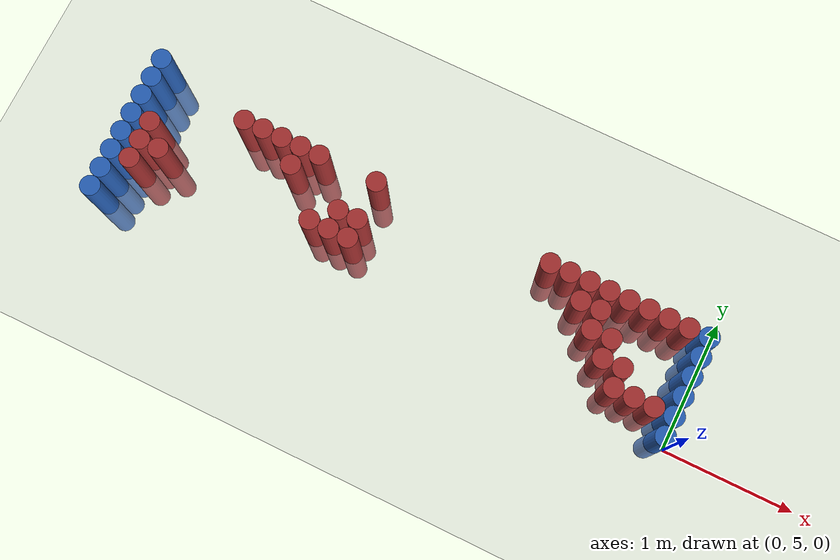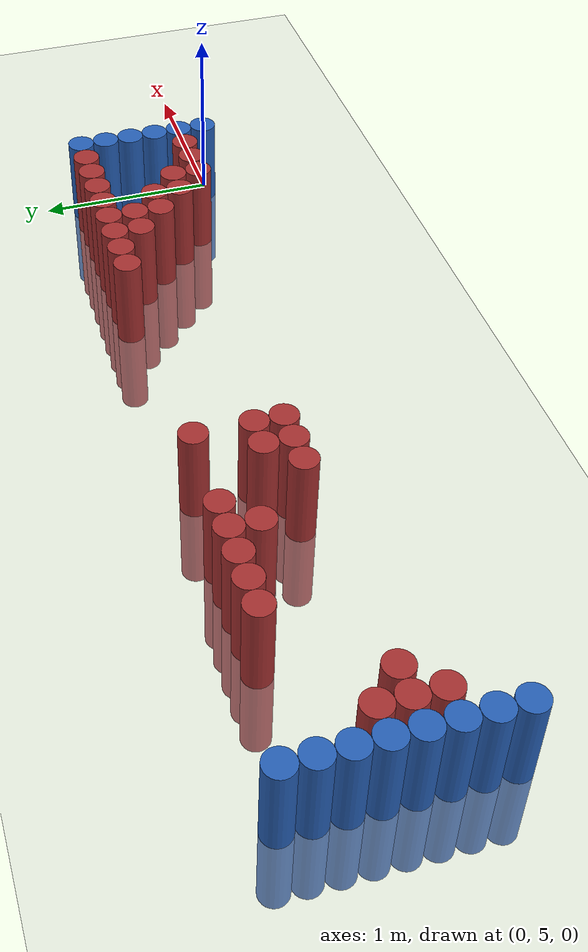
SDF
<sdf version="1.6">
 <world name="default">
  <model name="ground_plane">
   <static>1</static>
   <link name="link">
    <collision name="collision">
     <geometry><plane><normal>0 0 1</normal><size>100 100</size></plane></geometry>
     <surface><friction><ode><mu>100</mu><mu2>50</mu2></ode></friction></surface>
    </collision>
    <visual name="visual">
     <cast_shadows>0</cast_shadows>
     <geometry><plane><normal>0 0 1</normal><size>100 100</size></plane></geometry>
     <material>
      <script><uri>file://media/materials/scripts/gazebo.material</uri><name>Gazebo/Grey</name></script>
     </material>
    </visual>
   </link>
  </model>
  <model name="unit_cylinder_93">
   <static>1</static>
   <pose>-4.425000 4.875000 0.000000 0.000000 0.000000 0.000000</pose>
   <link name="link">
    <inertial>
     <mass>1</mass>
     <inertia><ixx>0.145833</ixx><ixy>0</ixy><ixz>0</ixz><iyy>0.145833</iyy><iyz>0</iyz><izz>0.125</izz></inertia>
    </inertial>
    <collision name="collision">
     <geometry><cylinder><radius>0.075000</radius><length>1</length></cylinder></geometry>
    </collision>
    <visual name="visual">
     <geometry><cylinder><radius>0.075000</radius><length>1</length></cylinder></geometry>
     <material>
      <ambient>0.152000 0.379000 0.720000 1</ambient>
      <diffuse>0.152000 0.379000 0.720000 1</diffuse>
     </material>
     <material>
      <script><name>Gazebo/Grey</name><uri>file://media/materials/scripts/gazebo.material</uri></script>
     </material>
    </visual>
   </link>
  </model>
  <model name="unit_cylinder_94">
   <static>1</static>
   <pose>-0.075000 5.025000 0.000000 0.000000 0.000000 0.000000</pose>
   <link name="link">
    <inertial>
     <mass>1</mass>
     <inertia><ixx>0.145833</ixx><ixy>0</ixy><ixz>0</ixz><iyy>0.145833</iyy><iyz>0</iyz><izz>0.125</izz></inertia>
    </inertial>
    <collision name="collision">
     <geometry><cylinder><radius>0.075000</radius><length>1</length></cylinder></geometry>
    </collision>
    <visual name="visual">
     <geometry><cylinder><radius>0.075000</radius><length>1</length></cylinder></geometry>
     <material>
      <ambient>0.152000 0.379000 0.720000 1</ambient>
      <diffuse>0.152000 0.379000 0.720000 1</diffuse>
     </material>
     <material>
      <script><name>Gazebo/Grey</name><uri>file://media/materials/scripts/gazebo.material</uri></script>
     </material>
    </visual>
   </link>
  </model>
  <model name="unit_cylinder_95">
   <static>1</static>
   <pose>-4.425000 5.025000 0.000000 0.000000 0.000000 0.000000</pose>
   <link name="link">
    <inertial>
     <mass>1</mass>
     <inertia><ixx>0.145833</ixx><ixy>0</ixy><ixz>0</ixz><iyy>0.145833</iyy><iyz>0</iyz><izz>0.125</izz></inertia>
    </inertial>
    <collision name="collision">
     <geometry><cylinder><radius>0.075000</radius><length>1</length></cylinder></geometry>
    </collision>
    <visual name="visual">
     <geometry><cylinder><radius>0.075000</radius><length>1</length></cylinder></geometry>
     <material>
      <ambient>0.152000 0.379000 0.720000 1</ambient>
      <diffuse>0.152000 0.379000 0.720000 1</diffuse>
     </material>
     <material>
      <script><name>Gazebo/Grey</name><uri>file://media/materials/scripts/gazebo.material</uri></script>
     </material>
    </visual>
   </link>
  </model>
  <model name="unit_cylinder_96">
   <static>1</static>
   <pose>-4.425000 5.175000 0.000000 0.000000 0.000000 0.000000</pose>
   <link name="link">
    <inertial>
     <mass>1</mass>
     <inertia><ixx>0.145833</ixx><ixy>0</ixy><ixz>0</ixz><iyy>0.145833</iyy><iyz>0</iyz><izz>0.125</izz></inertia>
    </inertial>
    <collision name="collision">
     <geometry><cylinder><radius>0.075000</radius><length>1</length></cylinder></geometry>
    </collision>
    <visual name="visual">
     <geometry><cylinder><radius>0.075000</radius><length>1</length></cylinder></geometry>
     <material>
      <ambient>0.152000 0.379000 0.720000 1</ambient>
      <diffuse>0.152000 0.379000 0.720000 1</diffuse>
     </material>
     <material>
      <script><name>Gazebo/Grey</name><uri>file://media/materials/scripts/gazebo.material</uri></script>
     </material>
    </visual>
   </link>
  </model>
  <model name="unit_cylinder_97">
   <static>1</static>
   <pose>-4.425000 5.325000 0.000000 0.000000 0.000000 0.000000</pose>
   <link name="link">
    <inertial>
     <mass>1</mass>
     <inertia><ixx>0.145833</ixx><ixy>0</ixy><ixz>0</ixz><iyy>0.145833</iyy><iyz>0</iyz><izz>0.125</izz></inertia>
    </inertial>
    <collision name="collision">
     <geometry><cylinder><radius>0.075000</radius><length>1</length></cylinder></geometry>
    </collision>
    <visual name="visual">
     <geometry><cylinder><radius>0.075000</radius><length>1</length></cylinder></geometry>
     <material>
      <ambient>0.152000 0.379000 0.720000 1</ambient>
      <diffuse>0.152000 0.379000 0.720000 1</diffuse>
     </material>
     <material>
      <script><name>Gazebo/Grey</name><uri>file://media/materials/scripts/gazebo.material</uri></script>
     </material>
    </visual>
   </link>
  </model>
  <model name="unit_cylinder_98">
   <static>1</static>
   <pose>-4.425000 5.475000 0.000000 0.000000 0.000000 0.000000</pose>
   <link name="link">
    <inertial>
     <mass>1</mass>
     <inertia><ixx>0.145833</ixx><ixy>0</ixy><ixz>0</ixz><iyy>0.145833</iyy><iyz>0</iyz><izz>0.125</izz></inertia>
    </inertial>
    <collision name="collision">
     <geometry><cylinder><radius>0.075000</radius><length>1</length></cylinder></geometry>
    </collision>
    <visual name="visual">
     <geometry><cylinder><radius>0.075000</radius><length>1</length></cylinder></geometry>
     <material>
      <ambient>0.152000 0.379000 0.720000 1</ambient>
      <diffuse>0.152000 0.379000 0.720000 1</diffuse>
     </material>
     <material>
      <script><name>Gazebo/Grey</name><uri>file://media/materials/scripts/gazebo.material</uri></script>
     </material>
    </visual>
   </link>
  </model>
  <model name="unit_cylinder_99">
   <static>1</static>
   <pose>-4.425000 5.625000 0.000000 0.000000 0.000000 0.000000</pose>
   <link name="link">
    <inertial>
     <mass>1</mass>
     <inertia><ixx>0.145833</ixx><ixy>0</ixy><ixz>0</ixz><iyy>0.145833</iyy><iyz>0</iyz><izz>0.125</izz></inertia>
    </inertial>
    <collision name="collision">
     <geometry><cylinder><radius>0.075000</radius><length>1</length></cylinder></geometry>
    </collision>
    <visual name="visual">
     <geometry><cylinder><radius>0.075000</radius><length>1</length></cylinder></geometry>
     <material>
      <ambient>0.152000 0.379000 0.720000 1</ambient>
      <diffuse>0.152000 0.379000 0.720000 1</diffuse>
     </material>
     <material>
      <script><name>Gazebo/Grey</name><uri>file://media/materials/scripts/gazebo.material</uri></script>
     </material>
    </visual>
   </link>
  </model>
  <model name="unit_cylinder_100">
   <static>1</static>
   <pose>-4.425000 5.775000 0.000000 0.000000 0.000000 0.000000</pose>
   <link name="link">
    <inertial>
     <mass>1</mass>
     <inertia><ixx>0.145833</ixx><ixy>0</ixy><ixz>0</ixz><iyy>0.145833</iyy><iyz>0</iyz><izz>0.125</izz></inertia>
    </inertial>
    <collision name="collision">
     <geometry><cylinder><radius>0.075000</radius><length>1</length></cylinder></geometry>
    </collision>
    <visual name="visual">
     <geometry><cylinder><radius>0.075000</radius><length>1</length></cylinder></geometry>
     <material>
      <ambient>0.152000 0.379000 0.720000 1</ambient>
      <diffuse>0.152000 0.379000 0.720000 1</diffuse>
     </material>
     <material>
      <script><name>Gazebo/Grey</name><uri>file://media/materials/scripts/gazebo.material</uri></script>
     </material>
    </visual>
   </link>
  </model>
  <model name="unit_cylinder_101">
   <static>1</static>
   <pose>-4.425000 5.925000 0.000000 0.000000 0.000000 0.000000</pose>
   <link name="link">
    <inertial>
     <mass>1</mass>
     <inertia><ixx>0.145833</ixx><ixy>0</ixy><ixz>0</ixz><iyy>0.145833</iyy><iyz>0</iyz><izz>0.125</izz></inertia>
    </inertial>
    <collision name="collision">
     <geometry><cylinder><radius>0.075000</radius><length>1</length></cylinder></geometry>
    </collision>
    <visual name="visual">
     <geometry><cylinder><radius>0.075000</radius><length>1</length></cylinder></geometry>
     <material>
      <ambient>0.152000 0.379000 0.720000 1</ambient>
      <diffuse>0.152000 0.379000 0.720000 1</diffuse>
     </material>
     <material>
      <script><name>Gazebo/Grey</name><uri>file://media/materials/scripts/gazebo.material</uri></script>
     </material>
    </visual>
   </link>
  </model>
  <model name="unit_cylinder_126">
   <static>1</static>
   <pose>-4.275000 5.175000 0.000000 0.000000 0.000000 0.000000</pose>
   <link name="link">
    <inertial>
     <mass>1</mass>
     <inertia><ixx>0.145833</ixx><ixy>0</ixy><ixz>0</ixz><iyy>0.145833</iyy><iyz>0</iyz><izz>0.125</izz></inertia>
    </inertial>
    <collision name="collision">
     <geometry><cylinder><radius>0.075000</radius><length>1</length></cylinder></geometry>
    </collision>
    <visual name="visual">
     <geometry><cylinder><radius>0.075000</radius><length>1</length></cylinder></geometry>
     <material>
      <ambient>0.648000 0.192000 0.192000 1</ambient>
      <diffuse>0.648000 0.192000 0.192000 1</diffuse>
     </material>
     <material>
      <script><name>Gazebo/Grey</name><uri>file://media/materials/scripts/gazebo.material</uri></script>
     </material>
    </visual>
   </link>
  </model>
  <model name="unit_cylinder_127">
   <static>1</static>
   <pose>-4.275000 5.325000 0.000000 0.000000 0.000000 0.000000</pose>
   <link name="link">
    <inertial>
     <mass>1</mass>
     <inertia><ixx>0.145833</ixx><ixy>0</ixy><ixz>0</ixz><iyy>0.145833</iyy><iyz>0</iyz><izz>0.125</izz></inertia>
    </inertial>
    <collision name="collision">
     <geometry><cylinder><radius>0.075000</radius><length>1</length></cylinder></geometry>
    </collision>
    <visual name="visual">
     <geometry><cylinder><radius>0.075000</radius><length>1</length></cylinder></geometry>
     <material>
      <ambient>0.648000 0.192000 0.192000 1</ambient>
      <diffuse>0.648000 0.192000 0.192000 1</diffuse>
     </material>
     <material>
      <script><name>Gazebo/Grey</name><uri>file://media/materials/scripts/gazebo.material</uri></script>
     </material>
    </visual>
   </link>
  </model>
  <model name="unit_cylinder_128">
   <static>1</static>
   <pose>-4.275000 5.475000 0.000000 0.000000 0.000000 0.000000</pose>
   <link name="link">
    <inertial>
     <mass>1</mass>
     <inertia><ixx>0.145833</ixx><ixy>0</ixy><ixz>0</ixz><iyy>0.145833</iyy><iyz>0</iyz><izz>0.125</izz></inertia>
    </inertial>
    <collision name="collision">
     <geometry><cylinder><radius>0.075000</radius><length>1</length></cylinder></geometry>
    </collision>
    <visual name="visual">
     <geometry><cylinder><radius>0.075000</radius><length>1</length></cylinder></geometry>
     <material>
      <ambient>0.648000 0.192000 0.192000 1</ambient>
      <diffuse>0.648000 0.192000 0.192000 1</diffuse>
     </material>
     <material>
      <script><name>Gazebo/Grey</name><uri>file://media/materials/scripts/gazebo.material</uri></script>
     </material>
    </visual>
   </link>
  </model>
  <model name="unit_cylinder_137">
   <static>1</static>
   <pose>-4.125000 5.325000 0.000000 0.000000 0.000000 0.000000</pose>
   <link name="link">
    <inertial>
     <mass>1</mass>
     <inertia><ixx>0.145833</ixx><ixy>0</ixy><ixz>0</ixz><iyy>0.145833</iyy><iyz>0</iyz><izz>0.125</izz></inertia>
    </inertial>
    <collision name="collision">
     <geometry><cylinder><radius>0.075000</radius><length>1</length></cylinder></geometry>
    </collision>
    <visual name="visual">
     <geometry><cylinder><radius>0.075000</radius><length>1</length></cylinder></geometry>
     <material>
      <ambient>0.648000 0.192000 0.192000 1</ambient>
      <diffuse>0.648000 0.192000 0.192000 1</diffuse>
     </material>
     <material>
      <script><name>Gazebo/Grey</name><uri>file://media/materials/scripts/gazebo.material</uri></script>
     </material>
    </visual>
   </link>
  </model>
  <model name="unit_cylinder_163">
   <static>1</static>
   <pose>-3.675000 5.775000 0.000000 0.000000 0.000000 0.000000</pose>
   <link name="link">
    <inertial>
     <mass>1</mass>
     <inertia><ixx>0.145833</ixx><ixy>0</ixy><ixz>0</ixz><iyy>0.145833</iyy><iyz>0</iyz><izz>0.125</izz></inertia>
    </inertial>
    <collision name="collision">
     <geometry><cylinder><radius>0.075000</radius><length>1</length></cylinder></geometry>
    </collision>
    <visual name="visual">
     <geometry><cylinder><radius>0.075000</radius><length>1</length></cylinder></geometry>
     <material>
      <ambient>0.648000 0.192000 0.192000 1</ambient>
      <diffuse>0.648000 0.192000 0.192000 1</diffuse>
     </material>
     <material>
      <script><name>Gazebo/Grey</name><uri>file://media/materials/scripts/gazebo.material</uri></script>
     </material>
    </visual>
   </link>
  </model>
  <model name="unit_cylinder_171">
   <static>1</static>
   <pose>-3.525000 5.775000 0.000000 0.000000 0.000000 0.000000</pose>
   <link name="link">
    <inertial>
     <mass>1</mass>
     <inertia><ixx>0.145833</ixx><ixy>0</ixy><ixz>0</ixz><iyy>0.145833</iyy><iyz>0</iyz><izz>0.125</izz></inertia>
    </inertial>
    <collision name="collision">
     <geometry><cylinder><radius>0.075000</radius><length>1</length></cylinder></geometry>
    </collision>
    <visual name="visual">
     <geometry><cylinder><radius>0.075000</radius><length>1</length></cylinder></geometry>
     <material>
      <ambient>0.648000 0.192000 0.192000 1</ambient>
      <diffuse>0.648000 0.192000 0.192000 1</diffuse>
     </material>
     <material>
      <script><name>Gazebo/Grey</name><uri>file://media/materials/scripts/gazebo.material</uri></script>
     </material>
    </visual>
   </link>
  </model>
  <model name="unit_cylinder_183">
   <static>1</static>
   <pose>-3.375000 5.775000 0.000000 0.000000 0.000000 0.000000</pose>
   <link name="link">
    <inertial>
     <mass>1</mass>
     <inertia><ixx>0.145833</ixx><ixy>0</ixy><ixz>0</ixz><iyy>0.145833</iyy><iyz>0</iyz><izz>0.125</izz></inertia>
    </inertial>
    <collision name="collision">
     <geometry><cylinder><radius>0.075000</radius><length>1</length></cylinder></geometry>
    </collision>
    <visual name="visual">
     <geometry><cylinder><radius>0.075000</radius><length>1</length></cylinder></geometry>
     <material>
      <ambient>0.648000 0.192000 0.192000 1</ambient>
      <diffuse>0.648000 0.192000 0.192000 1</diffuse>
     </material>
     <material>
      <script><name>Gazebo/Grey</name><uri>file://media/materials/scripts/gazebo.material</uri></script>
     </material>
    </visual>
   </link>
  </model>
  <model name="unit_cylinder_191">
   <static>1</static>
   <pose>-3.225000 5.625000 0.000000 0.000000 0.000000 0.000000</pose>
   <link name="link">
    <inertial>
     <mass>1</mass>
     <inertia><ixx>0.145833</ixx><ixy>0</ixy><ixz>0</ixz><iyy>0.145833</iyy><iyz>0</iyz><izz>0.125</izz></inertia>
    </inertial>
    <collision name="collision">
     <geometry><cylinder><radius>0.075000</radius><length>1</length></cylinder></geometry>
    </collision>
    <visual name="visual">
     <geometry><cylinder><radius>0.075000</radius><length>1</length></cylinder></geometry>
     <material>
      <ambient>0.648000 0.192000 0.192000 1</ambient>
      <diffuse>0.648000 0.192000 0.192000 1</diffuse>
     </material>
     <material>
      <script><name>Gazebo/Grey</name><uri>file://media/materials/scripts/gazebo.material</uri></script>
     </material>
    </visual>
   </link>
  </model>
  <model name="unit_cylinder_192">
   <static>1</static>
   <pose>-3.225000 5.775000 0.000000 0.000000 0.000000 0.000000</pose>
   <link name="link">
    <inertial>
     <mass>1</mass>
     <inertia><ixx>0.145833</ixx><ixy>0</ixy><ixz>0</ixz><iyy>0.145833</iyy><iyz>0</iyz><izz>0.125</izz></inertia>
    </inertial>
    <collision name="collision">
     <geometry><cylinder><radius>0.075000</radius><length>1</length></cylinder></geometry>
    </collision>
    <visual name="visual">
     <geometry><cylinder><radius>0.075000</radius><length>1</length></cylinder></geometry>
     <material>
      <ambient>0.648000 0.192000 0.192000 1</ambient>
      <diffuse>0.648000 0.192000 0.192000 1</diffuse>
     </material>
     <material>
      <script><name>Gazebo/Grey</name><uri>file://media/materials/scripts/gazebo.material</uri></script>
     </material>
    </visual>
   </link>
  </model>
  <model name="unit_cylinder_196">
   <static>1</static>
   <pose>-3.075000 5.775000 0.000000 0.000000 0.000000 0.000000</pose>
   <link name="link">
    <inertial>
     <mass>1</mass>
     <inertia><ixx>0.145833</ixx><ixy>0</ixy><ixz>0</ixz><iyy>0.145833</iyy><iyz>0</iyz><izz>0.125</izz></inertia>
    </inertial>
    <collision name="collision">
     <geometry><cylinder><radius>0.075000</radius><length>1</length></cylinder></geometry>
    </collision>
    <visual name="visual">
     <geometry><cylinder><radius>0.075000</radius><length>1</length></cylinder></geometry>
     <material>
      <ambient>0.648000 0.192000 0.192000 1</ambient>
      <diffuse>0.648000 0.192000 0.192000 1</diffuse>
     </material>
     <material>
      <script><name>Gazebo/Grey</name><uri>file://media/materials/scripts/gazebo.material</uri></script>
     </material>
    </visual>
   </link>
  </model>
  <model name="unit_cylinder_199">
   <static>1</static>
   <pose>-2.925000 5.325000 0.000000 0.000000 0.000000 0.000000</pose>
   <link name="link">
    <inertial>
     <mass>1</mass>
     <inertia><ixx>0.145833</ixx><ixy>0</ixy><ixz>0</ixz><iyy>0.145833</iyy><iyz>0</iyz><izz>0.125</izz></inertia>
    </inertial>
    <collision name="collision">
     <geometry><cylinder><radius>0.075000</radius><length>1</length></cylinder></geometry>
    </collision>
    <visual name="visual">
     <geometry><cylinder><radius>0.075000</radius><length>1</length></cylinder></geometry>
     <material>
      <ambient>0.648000 0.192000 0.192000 1</ambient>
      <diffuse>0.648000 0.192000 0.192000 1</diffuse>
     </material>
     <material>
      <script><name>Gazebo/Grey</name><uri>file://media/materials/scripts/gazebo.material</uri></script>
     </material>
    </visual>
   </link>
  </model>
  <model name="unit_cylinder_201">
   <static>1</static>
   <pose>-2.775000 5.325000 0.000000 0.000000 0.000000 0.000000</pose>
   <link name="link">
    <inertial>
     <mass>1</mass>
     <inertia><ixx>0.145833</ixx><ixy>0</ixy><ixz>0</ixz><iyy>0.145833</iyy><iyz>0</iyz><izz>0.125</izz></inertia>
    </inertial>
    <collision name="collision">
     <geometry><cylinder><radius>0.075000</radius><length>1</length></cylinder></geometry>
    </collision>
    <visual name="visual">
     <geometry><cylinder><radius>0.075000</radius><length>1</length></cylinder></geometry>
     <material>
      <ambient>0.648000 0.192000 0.192000 1</ambient>
      <diffuse>0.648000 0.192000 0.192000 1</diffuse>
     </material>
     <material>
      <script><name>Gazebo/Grey</name><uri>file://media/materials/scripts/gazebo.material</uri></script>
     </material>
    </visual>
   </link>
  </model>
  <model name="unit_cylinder_202">
   <static>1</static>
   <pose>-2.775000 5.475000 0.000000 0.000000 0.000000 0.000000</pose>
   <link name="link">
    <inertial>
     <mass>1</mass>
     <inertia><ixx>0.145833</ixx><ixy>0</ixy><ixz>0</ixz><iyy>0.145833</iyy><iyz>0</iyz><izz>0.125</izz></inertia>
    </inertial>
    <collision name="collision">
     <geometry><cylinder><radius>0.075000</radius><length>1</length></cylinder></geometry>
    </collision>
    <visual name="visual">
     <geometry><cylinder><radius>0.075000</radius><length>1</length></cylinder></geometry>
     <material>
      <ambient>0.648000 0.192000 0.192000 1</ambient>
      <diffuse>0.648000 0.192000 0.192000 1</diffuse>
     </material>
     <material>
      <script><name>Gazebo/Grey</name><uri>file://media/materials/scripts/gazebo.material</uri></script>
     </material>
    </visual>
   </link>
  </model>
  <model name="unit_cylinder_204">
   <static>1</static>
   <pose>-2.625000 5.325000 0.000000 0.000000 0.000000 0.000000</pose>
   <link name="link">
    <inertial>
     <mass>1</mass>
     <inertia><ixx>0.145833</ixx><ixy>0</ixy><ixz>0</ixz><iyy>0.145833</iyy><iyz>0</iyz><izz>0.125</izz></inertia>
    </inertial>
    <collision name="collision">
     <geometry><cylinder><radius>0.075000</radius><length>1</length></cylinder></geometry>
    </collision>
    <visual name="visual">
     <geometry><cylinder><radius>0.075000</radius><length>1</length></cylinder></geometry>
     <material>
      <ambient>0.648000 0.192000 0.192000 1</ambient>
      <diffuse>0.648000 0.192000 0.192000 1</diffuse>
     </material>
     <material>
      <script><name>Gazebo/Grey</name><uri>file://media/materials/scripts/gazebo.material</uri></script>
     </material>
    </visual>
   </link>
  </model>
  <model name="unit_cylinder_205">
   <static>1</static>
   <pose>-2.625000 5.475000 0.000000 0.000000 0.000000 0.000000</pose>
   <link name="link">
    <inertial>
     <mass>1</mass>
     <inertia><ixx>0.145833</ixx><ixy>0</ixy><ixz>0</ixz><iyy>0.145833</iyy><iyz>0</iyz><izz>0.125</izz></inertia>
    </inertial>
    <collision name="collision">
     <geometry><cylinder><radius>0.075000</radius><length>1</length></cylinder></geometry>
    </collision>
    <visual name="visual">
     <geometry><cylinder><radius>0.075000</radius><length>1</length></cylinder></geometry>
     <material>
      <ambient>0.648000 0.192000 0.192000 1</ambient>
      <diffuse>0.648000 0.192000 0.192000 1</diffuse>
     </material>
     <material>
      <script><name>Gazebo/Grey</name><uri>file://media/materials/scripts/gazebo.material</uri></script>
     </material>
    </visual>
   </link>
  </model>
  <model name="unit_cylinder_206">
   <static>1</static>
   <pose>-2.625000 5.775000 0.000000 0.000000 0.000000 0.000000</pose>
   <link name="link">
    <inertial>
     <mass>1</mass>
     <inertia><ixx>0.145833</ixx><ixy>0</ixy><ixz>0</ixz><iyy>0.145833</iyy><iyz>0</iyz><izz>0.125</izz></inertia>
    </inertial>
    <collision name="collision">
     <geometry><cylinder><radius>0.075000</radius><length>1</length></cylinder></geometry>
    </collision>
    <visual name="visual">
     <geometry><cylinder><radius>0.075000</radius><length>1</length></cylinder></geometry>
     <material>
      <ambient>0.648000 0.192000 0.192000 1</ambient>
      <diffuse>0.648000 0.192000 0.192000 1</diffuse>
     </material>
     <material>
      <script><name>Gazebo/Grey</name><uri>file://media/materials/scripts/gazebo.material</uri></script>
     </material>
    </visual>
   </link>
  </model>
  <model name="unit_cylinder_242">
   <static>1</static>
   <pose>-1.275000 5.775000 0.000000 0.000000 0.000000 0.000000</pose>
   <link name="link">
    <inertial>
     <mass>1</mass>
     <inertia><ixx>0.145833</ixx><ixy>0</ixy><ixz>0</ixz><iyy>0.145833</iyy><iyz>0</iyz><izz>0.125</izz></inertia>
    </inertial>
    <collision name="collision">
     <geometry><cylinder><radius>0.075000</radius><length>1</length></cylinder></geometry>
    </collision>
    <visual name="visual">
     <geometry><cylinder><radius>0.075000</radius><length>1</length></cylinder></geometry>
     <material>
      <ambient>0.648000 0.192000 0.192000 1</ambient>
      <diffuse>0.648000 0.192000 0.192000 1</diffuse>
     </material>
     <material>
      <script><name>Gazebo/Grey</name><uri>file://media/materials/scripts/gazebo.material</uri></script>
     </material>
    </visual>
   </link>
  </model>
  <model name="unit_cylinder_245">
   <static>1</static>
   <pose>-1.125000 5.775000 0.000000 0.000000 0.000000 0.000000</pose>
   <link name="link">
    <inertial>
     <mass>1</mass>
     <inertia><ixx>0.145833</ixx><ixy>0</ixy><ixz>0</ixz><iyy>0.145833</iyy><iyz>0</iyz><izz>0.125</izz></inertia>
    </inertial>
    <collision name="collision">
     <geometry><cylinder><radius>0.075000</radius><length>1</length></cylinder></geometry>
    </collision>
    <visual name="visual">
     <geometry><cylinder><radius>0.075000</radius><length>1</length></cylinder></geometry>
     <material>
      <ambient>0.648000 0.192000 0.192000 1</ambient>
      <diffuse>0.648000 0.192000 0.192000 1</diffuse>
     </material>
     <material>
      <script><name>Gazebo/Grey</name><uri>file://media/materials/scripts/gazebo.material</uri></script>
     </material>
    </visual>
   </link>
  </model>
  <model name="unit_cylinder_249">
   <static>1</static>
   <pose>-0.975000 5.625000 0.000000 0.000000 0.000000 0.000000</pose>
   <link name="link">
    <inertial>
     <mass>1</mass>
     <inertia><ixx>0.145833</ixx><ixy>0</ixy><ixz>0</ixz><iyy>0.145833</iyy><iyz>0</iyz><izz>0.125</izz></inertia>
    </inertial>
    <collision name="collision">
     <geometry><cylinder><radius>0.075000</radius><length>1</length></cylinder></geometry>
    </collision>
    <visual name="visual">
     <geometry><cylinder><radius>0.075000</radius><length>1</length></cylinder></geometry>
     <material>
      <ambient>0.648000 0.192000 0.192000 1</ambient>
      <diffuse>0.648000 0.192000 0.192000 1</diffuse>
     </material>
     <material>
      <script><name>Gazebo/Grey</name><uri>file://media/materials/scripts/gazebo.material</uri></script>
     </material>
    </visual>
   </link>
  </model>
  <model name="unit_cylinder_250">
   <static>1</static>
   <pose>-0.975000 5.775000 0.000000 0.000000 0.000000 0.000000</pose>
   <link name="link">
    <inertial>
     <mass>1</mass>
     <inertia><ixx>0.145833</ixx><ixy>0</ixy><ixz>0</ixz><iyy>0.145833</iyy><iyz>0</iyz><izz>0.125</izz></inertia>
    </inertial>
    <collision name="collision">
     <geometry><cylinder><radius>0.075000</radius><length>1</length></cylinder></geometry>
    </collision>
    <visual name="visual">
     <geometry><cylinder><radius>0.075000</radius><length>1</length></cylinder></geometry>
     <material>
      <ambient>0.648000 0.192000 0.192000 1</ambient>
      <diffuse>0.648000 0.192000 0.192000 1</diffuse>
     </material>
     <material>
      <script><name>Gazebo/Grey</name><uri>file://media/materials/scripts/gazebo.material</uri></script>
     </material>
    </visual>
   </link>
  </model>
  <model name="unit_cylinder_255">
   <static>1</static>
   <pose>-0.825000 5.475000 0.000000 0.000000 0.000000 0.000000</pose>
   <link name="link">
    <inertial>
     <mass>1</mass>
     <inertia><ixx>0.145833</ixx><ixy>0</ixy><ixz>0</ixz><iyy>0.145833</iyy><iyz>0</iyz><izz>0.125</izz></inertia>
    </inertial>
    <collision name="collision">
     <geometry><cylinder><radius>0.075000</radius><length>1</length></cylinder></geometry>
    </collision>
    <visual name="visual">
     <geometry><cylinder><radius>0.075000</radius><length>1</length></cylinder></geometry>
     <material>
      <ambient>0.648000 0.192000 0.192000 1</ambient>
      <diffuse>0.648000 0.192000 0.192000 1</diffuse>
     </material>
     <material>
      <script><name>Gazebo/Grey</name><uri>file://media/materials/scripts/gazebo.material</uri></script>
     </material>
    </visual>
   </link>
  </model>
  <model name="unit_cylinder_256">
   <static>1</static>
   <pose>-0.825000 5.625000 0.000000 0.000000 0.000000 0.000000</pose>
   <link name="link">
    <inertial>
     <mass>1</mass>
     <inertia><ixx>0.145833</ixx><ixy>0</ixy><ixz>0</ixz><iyy>0.145833</iyy><iyz>0</iyz><izz>0.125</izz></inertia>
    </inertial>
    <collision name="collision">
     <geometry><cylinder><radius>0.075000</radius><length>1</length></cylinder></geometry>
    </collision>
    <visual name="visual">
     <geometry><cylinder><radius>0.075000</radius><length>1</length></cylinder></geometry>
     <material>
      <ambient>0.648000 0.192000 0.192000 1</ambient>
      <diffuse>0.648000 0.192000 0.192000 1</diffuse>
     </material>
     <material>
      <script><name>Gazebo/Grey</name><uri>file://media/materials/scripts/gazebo.material</uri></script>
     </material>
    </visual>
   </link>
  </model>
  <model name="unit_cylinder_257">
   <static>1</static>
   <pose>-0.825000 5.775000 0.000000 0.000000 0.000000 0.000000</pose>
   <link name="link">
    <inertial>
     <mass>1</mass>
     <inertia><ixx>0.145833</ixx><ixy>0</ixy><ixz>0</ixz><iyy>0.145833</iyy><iyz>0</iyz><izz>0.125</izz></inertia>
    </inertial>
    <collision name="collision">
     <geometry><cylinder><radius>0.075000</radius><length>1</length></cylinder></geometry>
    </collision>
    <visual name="visual">
     <geometry><cylinder><radius>0.075000</radius><length>1</length></cylinder></geometry>
     <material>
      <ambient>0.648000 0.192000 0.192000 1</ambient>
      <diffuse>0.648000 0.192000 0.192000 1</diffuse>
     </material>
     <material>
      <script><name>Gazebo/Grey</name><uri>file://media/materials/scripts/gazebo.material</uri></script>
     </material>
    </visual>
   </link>
  </model>
  <model name="unit_cylinder_260">
   <static>1</static>
   <pose>-0.675000 5.325000 0.000000 0.000000 0.000000 0.000000</pose>
   <link name="link">
    <inertial>
     <mass>1</mass>
     <inertia><ixx>0.145833</ixx><ixy>0</ixy><ixz>0</ixz><iyy>0.145833</iyy><iyz>0</iyz><izz>0.125</izz></inertia>
    </inertial>
    <collision name="collision">
     <geometry><cylinder><radius>0.075000</radius><length>1</length></cylinder></geometry>
    </collision>
    <visual name="visual">
     <geometry><cylinder><radius>0.075000</radius><length>1</length></cylinder></geometry>
     <material>
      <ambient>0.648000 0.192000 0.192000 1</ambient>
      <diffuse>0.648000 0.192000 0.192000 1</diffuse>
     </material>
     <material>
      <script><name>Gazebo/Grey</name><uri>file://media/materials/scripts/gazebo.material</uri></script>
     </material>
    </visual>
   </link>
  </model>
  <model name="unit_cylinder_261">
   <static>1</static>
   <pose>-0.675000 5.475000 0.000000 0.000000 0.000000 0.000000</pose>
   <link name="link">
    <inertial>
     <mass>1</mass>
     <inertia><ixx>0.145833</ixx><ixy>0</ixy><ixz>0</ixz><iyy>0.145833</iyy><iyz>0</iyz><izz>0.125</izz></inertia>
    </inertial>
    <collision name="collision">
     <geometry><cylinder><radius>0.075000</radius><length>1</length></cylinder></geometry>
    </collision>
    <visual name="visual">
     <geometry><cylinder><radius>0.075000</radius><length>1</length></cylinder></geometry>
     <material>
      <ambient>0.648000 0.192000 0.192000 1</ambient>
      <diffuse>0.648000 0.192000 0.192000 1</diffuse>
     </material>
     <material>
      <script><name>Gazebo/Grey</name><uri>file://media/materials/scripts/gazebo.material</uri></script>
     </material>
    </visual>
   </link>
  </model>
  <model name="unit_cylinder_262">
   <static>1</static>
   <pose>-0.675000 5.775000 0.000000 0.000000 0.000000 0.000000</pose>
   <link name="link">
    <inertial>
     <mass>1</mass>
     <inertia><ixx>0.145833</ixx><ixy>0</ixy><ixz>0</ixz><iyy>0.145833</iyy><iyz>0</iyz><izz>0.125</izz></inertia>
    </inertial>
    <collision name="collision">
     <geometry><cylinder><radius>0.075000</radius><length>1</length></cylinder></geometry>
    </collision>
    <visual name="visual">
     <geometry><cylinder><radius>0.075000</radius><length>1</length></cylinder></geometry>
     <material>
      <ambient>0.648000 0.192000 0.192000 1</ambient>
      <diffuse>0.648000 0.192000 0.192000 1</diffuse>
     </material>
     <material>
      <script><name>Gazebo/Grey</name><uri>file://media/materials/scripts/gazebo.material</uri></script>
     </material>
    </visual>
   </link>
  </model>
  <model name="unit_cylinder_263">
   <static>1</static>
   <pose>-0.525000 5.175000 0.000000 0.000000 0.000000 0.000000</pose>
   <link name="link">
    <inertial>
     <mass>1</mass>
     <inertia><ixx>0.145833</ixx><ixy>0</ixy><ixz>0</ixz><iyy>0.145833</iyy><iyz>0</iyz><izz>0.125</izz></inertia>
    </inertial>
    <collision name="collision">
     <geometry><cylinder><radius>0.075000</radius><length>1</length></cylinder></geometry>
    </collision>
    <visual name="visual">
     <geometry><cylinder><radius>0.075000</radius><length>1</length></cylinder></geometry>
     <material>
      <ambient>0.648000 0.192000 0.192000 1</ambient>
      <diffuse>0.648000 0.192000 0.192000 1</diffuse>
     </material>
     <material>
      <script><name>Gazebo/Grey</name><uri>file://media/materials/scripts/gazebo.material</uri></script>
     </material>
    </visual>
   </link>
  </model>
  <model name="unit_cylinder_264">
   <static>1</static>
   <pose>-0.525000 5.325000 0.000000 0.000000 0.000000 0.000000</pose>
   <link name="link">
    <inertial>
     <mass>1</mass>
     <inertia><ixx>0.145833</ixx><ixy>0</ixy><ixz>0</ixz><iyy>0.145833</iyy><iyz>0</iyz><izz>0.125</izz></inertia>
    </inertial>
    <collision name="collision">
     <geometry><cylinder><radius>0.075000</radius><length>1</length></cylinder></geometry>
    </collision>
    <visual name="visual">
     <geometry><cylinder><radius>0.075000</radius><length>1</length></cylinder></geometry>
     <material>
      <ambient>0.648000 0.192000 0.192000 1</ambient>
      <diffuse>0.648000 0.192000 0.192000 1</diffuse>
     </material>
     <material>
      <script><name>Gazebo/Grey</name><uri>file://media/materials/scripts/gazebo.material</uri></script>
     </material>
    </visual>
   </link>
  </model>
  <model name="unit_cylinder_265">
   <static>1</static>
   <pose>-0.525000 5.775000 0.000000 0.000000 0.000000 0.000000</pose>
   <link name="link">
    <inertial>
     <mass>1</mass>
     <inertia><ixx>0.145833</ixx><ixy>0</ixy><ixz>0</ixz><iyy>0.145833</iyy><iyz>0</iyz><izz>0.125</izz></inertia>
    </inertial>
    <collision name="collision">
     <geometry><cylinder><radius>0.075000</radius><length>1</length></cylinder></geometry>
    </collision>
    <visual name="visual">
     <geometry><cylinder><radius>0.075000</radius><length>1</length></cylinder></geometry>
     <material>
      <ambient>0.648000 0.192000 0.192000 1</ambient>
      <diffuse>0.648000 0.192000 0.192000 1</diffuse>
     </material>
     <material>
      <script><name>Gazebo/Grey</name><uri>file://media/materials/scripts/gazebo.material</uri></script>
     </material>
    </visual>
   </link>
  </model>
  <model name="unit_cylinder_269">
   <static>1</static>
   <pose>-0.375000 5.175000 0.000000 0.000000 0.000000 0.000000</pose>
   <link name="link">
    <inertial>
     <mass>1</mass>
     <inertia><ixx>0.145833</ixx><ixy>0</ixy><ixz>0</ixz><iyy>0.145833</iyy><iyz>0</iyz><izz>0.125</izz></inertia>
    </inertial>
    <collision name="collision">
     <geometry><cylinder><radius>0.075000</radius><length>1</length></cylinder></geometry>
    </collision>
    <visual name="visual">
     <geometry><cylinder><radius>0.075000</radius><length>1</length></cylinder></geometry>
     <material>
      <ambient>0.648000 0.192000 0.192000 1</ambient>
      <diffuse>0.648000 0.192000 0.192000 1</diffuse>
     </material>
     <material>
      <script><name>Gazebo/Grey</name><uri>file://media/materials/scripts/gazebo.material</uri></script>
     </material>
    </visual>
   </link>
  </model>
  <model name="unit_cylinder_270">
   <static>1</static>
   <pose>-0.375000 5.775000 0.000000 0.000000 0.000000 0.000000</pose>
   <link name="link">
    <inertial>
     <mass>1</mass>
     <inertia><ixx>0.145833</ixx><ixy>0</ixy><ixz>0</ixz><iyy>0.145833</iyy><iyz>0</iyz><izz>0.125</izz></inertia>
    </inertial>
    <collision name="collision">
     <geometry><cylinder><radius>0.075000</radius><length>1</length></cylinder></geometry>
    </collision>
    <visual name="visual">
     <geometry><cylinder><radius>0.075000</radius><length>1</length></cylinder></geometry>
     <material>
      <ambient>0.648000 0.192000 0.192000 1</ambient>
      <diffuse>0.648000 0.192000 0.192000 1</diffuse>
     </material>
     <material>
      <script><name>Gazebo/Grey</name><uri>file://media/materials/scripts/gazebo.material</uri></script>
     </material>
    </visual>
   </link>
  </model>
  <model name="unit_cylinder_284">
   <static>1</static>
   <pose>-0.225000 5.175000 0.000000 0.000000 0.000000 0.000000</pose>
   <link name="link">
    <inertial>
     <mass>1</mass>
     <inertia><ixx>0.145833</ixx><ixy>0</ixy><ixz>0</ixz><iyy>0.145833</iyy><iyz>0</iyz><izz>0.125</izz></inertia>
    </inertial>
    <collision name="collision">
     <geometry><cylinder><radius>0.075000</radius><length>1</length></cylinder></geometry>
    </collision>
    <visual name="visual">
     <geometry><cylinder><radius>0.075000</radius><length>1</length></cylinder></geometry>
     <material>
      <ambient>0.648000 0.192000 0.192000 1</ambient>
      <diffuse>0.648000 0.192000 0.192000 1</diffuse>
     </material>
     <material>
      <script><name>Gazebo/Grey</name><uri>file://media/materials/scripts/gazebo.material</uri></script>
     </material>
    </visual>
   </link>
  </model>
  <model name="unit_cylinder_285">
   <static>1</static>
   <pose>-0.225000 5.775000 0.000000 0.000000 0.000000 0.000000</pose>
   <link name="link">
    <inertial>
     <mass>1</mass>
     <inertia><ixx>0.145833</ixx><ixy>0</ixy><ixz>0</ixz><iyy>0.145833</iyy><iyz>0</iyz><izz>0.125</izz></inertia>
    </inertial>
    <collision name="collision">
     <geometry><cylinder><radius>0.075000</radius><length>1</length></cylinder></geometry>
    </collision>
    <visual name="visual">
     <geometry><cylinder><radius>0.075000</radius><length>1</length></cylinder></geometry>
     <material>
      <ambient>0.648000 0.192000 0.192000 1</ambient>
      <diffuse>0.648000 0.192000 0.192000 1</diffuse>
     </material>
     <material>
      <script><name>Gazebo/Grey</name><uri>file://media/materials/scripts/gazebo.material</uri></script>
     </material>
    </visual>
   </link>
  </model>
  <model name="unit_cylinder_298">
   <static>1</static>
   <pose>-0.075000 5.175000 0.000000 0.000000 0.000000 0.000000</pose>
   <link name="link">
    <inertial>
     <mass>1</mass>
     <inertia><ixx>0.145833</ixx><ixy>0</ixy><ixz>0</ixz><iyy>0.145833</iyy><iyz>0</iyz><izz>0.125</izz></inertia>
    </inertial>
    <collision name="collision">
     <geometry><cylinder><radius>0.075000</radius><length>1</length></cylinder></geometry>
    </collision>
    <visual name="visual">
     <geometry><cylinder><radius>0.075000</radius><length>1</length></cylinder></geometry>
     <material>
      <ambient>0.152000 0.379000 0.720000 1</ambient>
      <diffuse>0.152000 0.379000 0.720000 1</diffuse>
     </material>
     <material>
      <script><name>Gazebo/Grey</name><uri>file://media/materials/scripts/gazebo.material</uri></script>
     </material>
    </visual>
   </link>
  </model>
  <model name="unit_cylinder_299">
   <static>1</static>
   <pose>-0.075000 5.325000 0.000000 0.000000 0.000000 0.000000</pose>
   <link name="link">
    <inertial>
     <mass>1</mass>
     <inertia><ixx>0.145833</ixx><ixy>0</ixy><ixz>0</ixz><iyy>0.145833</iyy><iyz>0</iyz><izz>0.125</izz></inertia>
    </inertial>
    <collision name="collision">
     <geometry><cylinder><radius>0.075000</radius><length>1</length></cylinder></geometry>
    </collision>
    <visual name="visual">
     <geometry><cylinder><radius>0.075000</radius><length>1</length></cylinder></geometry>
     <material>
      <ambient>0.152000 0.379000 0.720000 1</ambient>
      <diffuse>0.152000 0.379000 0.720000 1</diffuse>
     </material>
     <material>
      <script><name>Gazebo/Grey</name><uri>file://media/materials/scripts/gazebo.material</uri></script>
     </material>
    </visual>
   </link>
  </model>
  <model name="unit_cylinder_300">
   <static>1</static>
   <pose>-0.075000 5.475000 0.000000 0.000000 0.000000 0.000000</pose>
   <link name="link">
    <inertial>
     <mass>1</mass>
     <inertia><ixx>0.145833</ixx><ixy>0</ixy><ixz>0</ixz><iyy>0.145833</iyy><iyz>0</iyz><izz>0.125</izz></inertia>
    </inertial>
    <collision name="collision">
     <geometry><cylinder><radius>0.075000</radius><length>1</length></cylinder></geometry>
    </collision>
    <visual name="visual">
     <geometry><cylinder><radius>0.075000</radius><length>1</length></cylinder></geometry>
     <material>
      <ambient>0.152000 0.379000 0.720000 1</ambient>
      <diffuse>0.152000 0.379000 0.720000 1</diffuse>
     </material>
     <material>
      <script><name>Gazebo/Grey</name><uri>file://media/materials/scripts/gazebo.material</uri></script>
     </material>
    </visual>
   </link>
  </model>
  <model name="unit_cylinder_301">
   <static>1</static>
   <pose>-0.075000 5.625000 0.000000 0.000000 0.000000 0.000000</pose>
   <link name="link">
    <inertial>
     <mass>1</mass>
     <inertia><ixx>0.145833</ixx><ixy>0</ixy><ixz>0</ixz><iyy>0.145833</iyy><iyz>0</iyz><izz>0.125</izz></inertia>
    </inertial>
    <collision name="collision">
     <geometry><cylinder><radius>0.075000</radius><length>1</length></cylinder></geometry>
    </collision>
    <visual name="visual">
     <geometry><cylinder><radius>0.075000</radius><length>1</length></cylinder></geometry>
     <material>
      <ambient>0.152000 0.379000 0.720000 1</ambient>
      <diffuse>0.152000 0.379000 0.720000 1</diffuse>
     </material>
     <material>
      <script><name>Gazebo/Grey</name><uri>file://media/materials/scripts/gazebo.material</uri></script>
     </material>
    </visual>
   </link>
  </model>
  <model name="unit_cylinder_302">
   <static>1</static>
   <pose>-0.075000 5.775000 0.000000 0.000000 0.000000 0.000000</pose>
   <link name="link">
    <inertial>
     <mass>1</mass>
     <inertia><ixx>0.145833</ixx><ixy>0</ixy><ixz>0</ixz><iyy>0.145833</iyy><iyz>0</iyz><izz>0.125</izz></inertia>
    </inertial>
    <collision name="collision">
     <geometry><cylinder><radius>0.075000</radius><length>1</length></cylinder></geometry>
    </collision>
    <visual name="visual">
     <geometry><cylinder><radius>0.075000</radius><length>1</length></cylinder></geometry>
     <material>
      <ambient>0.152000 0.379000 0.720000 1</ambient>
      <diffuse>0.152000 0.379000 0.720000 1</diffuse>
     </material>
     <material>
      <script><name>Gazebo/Grey</name><uri>file://media/materials/scripts/gazebo.material</uri></script>
     </material>
    </visual>
   </link>
  </model>
 </world>
</sdf>
